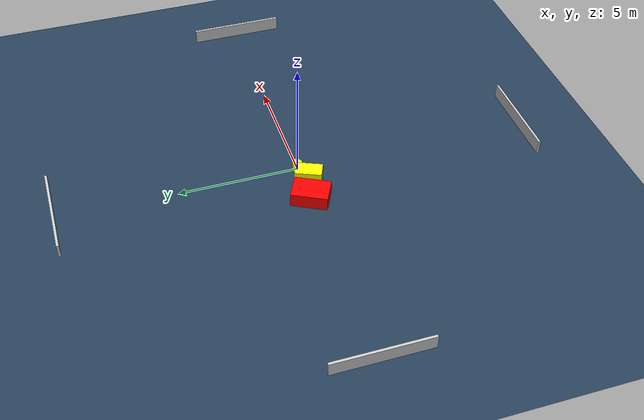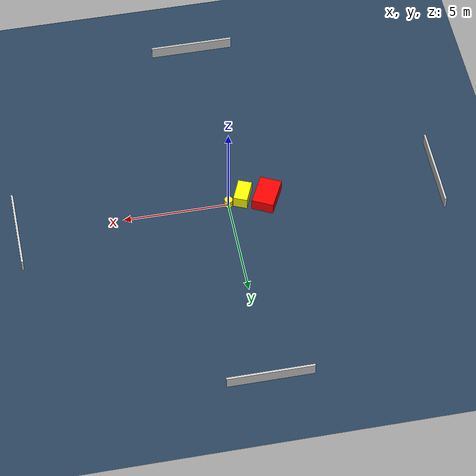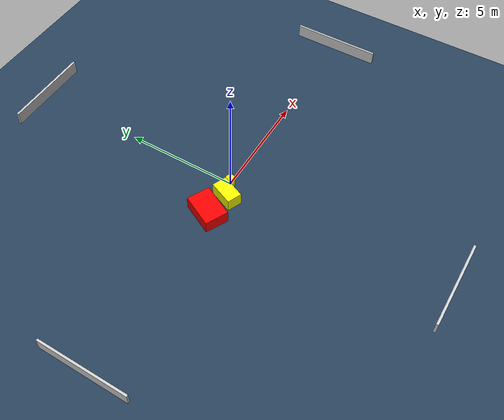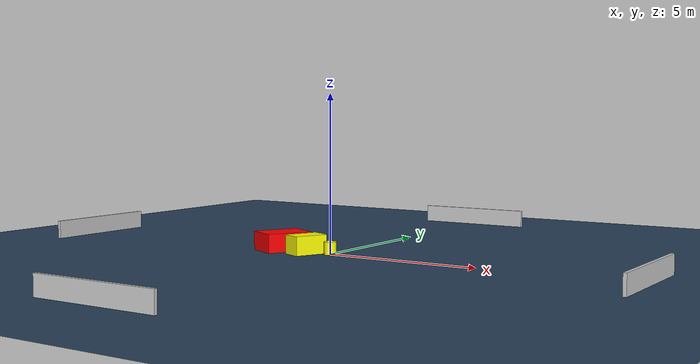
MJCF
<?xml version="1.0" ?>
<mujoco model="generated_environment">
  <option timestep="0.01" integrator="RK4" cone="elliptic"/>
  <default>
    <geom density="1"/>
  </default>
  <asset>
    <texture builtin="gradient" height="3072" name="skybox" rgb1="0.3 0.5 0.7" rgb2="0 0 0" type="skybox" width="512"/>
    <texture builtin="checker" height="300" name="groundplane" rgb1="0.2 0.3 0.4" rgb2="0.1 0.2 0.3" type="2d" width="300"/>
    <material name="groundplane" reflectance="0.2" texrepeat="5 5" texture="groundplane"/>
  </asset>
  <worldbody>
    <light dir="0 0 -1" directional="true" pos="0 0 1.5"/>
    <geom condim="3" friction="0.5 0.005 0.001" material="groundplane" name="floor" pos="0 0 0" size="0 0 0.05" type="plane"/>
    <body name="walls">
      <geom name="wall_1" condim="4" pos="-10.0 0.0 0.3" rgba="0.800000011920929 0.800000011920929 0.800000011920929 1.0" size="0.05 2.0 0.3" type="box"/>
      <geom name="wall_2" condim="4" pos="10.0 0.0 0.3" rgba="0.800000011920929 0.800000011920929 0.800000011920929 1.0" size="0.05 2.0 0.3" type="box"/>
      <geom name="wall_3" condim="4" pos="0.0 -10.0 0.3" rgba="0.800000011920929 0.800000011920929 0.800000011920929 1.0" size="2.0 0.05 0.3" type="box"/>
      <geom name="wall_4" condim="4" pos="0.0 10.0 0.3" rgba="0.800000011920929 0.800000011920929 0.800000011920929 1.0" size="2.0 0.05 0.3" type="box"/>
    </body>
    <body name="robot">
      <joint name="joint_x" type="slide" pos="0 0 0" axis="1 0 0"/>
      <joint name="joint_y" type="slide" pos="0 0 0" axis="0 1 0"/>
      <geom name="robot" type="cylinder" pos="0.0 0.0 0.2" size="0.2 0.2 0.0" mass="5.0" friction="1.0 0.005 0.0001" condim="4" rgba="1.0 1.0 0.0 1.0"/>
    </body>
    <body name="obstacle_1_movable">
      <geom name="obstacle_1_movable" condim="4" pos="-0.7289989998674552 -0.2685304536409825 0.3" euler="0 0 156.88328764130773" friction="0.0 0.005 0.001" rgba="1.0 1.0 0.0 1.0" size="0.3307811764563209 0.5544297479511064 0.3" type="box" mass="0.1"/>
      <joint type="free"/>
    </body>
    <body name="obstacle_2_static">
      <geom name="obstacle_2_static" condim="4" pos="-1.832721009298392 -0.013181043260703634 0.3" euler="0 0 153.15341674868554" friction="0.0 0.005 0.001" rgba="1.0 0.0 0.0 1.0" size="0.5201771272902729 0.7535362420861214 0.3" type="box"/>
    </body>
  </worldbody>
  <actuator>
    <motor name="actuator_x" joint="joint_x" gear="1" ctrlrange="-1 1"/>
    <motor name="actuator_y" joint="joint_y" gear="1" ctrlrange="-1 1"/>
  </actuator>
</mujoco>
